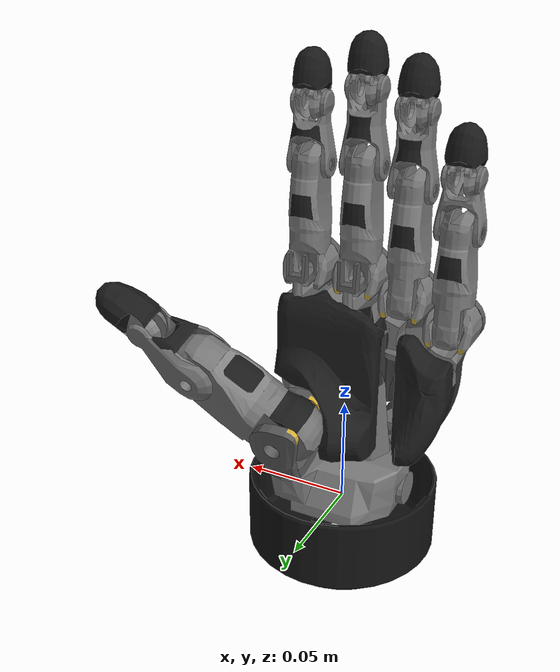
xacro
<?xml version="1.0"?>
<robot name="svh" xmlns:xacro="http://www.ros.org/wiki/xacro">

 <xacro:include filename="$(find schunk_svh_driver)/description/urdf/svh.urdf.xacro" />

 <link name="base_link" />

 <xacro:svh parent="base_link" name="left_hand" side="-1">
    <origin xyz="0 0 0"  rpy= "0 0 0" />
  </xacro:svh>

</robot>

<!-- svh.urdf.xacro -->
<robot xmlns:xacro="http://www.ros.org/wiki/xacro">

  <xacro:property name="cyl_radius" value="0.001" />
  <xacro:macro name="svh" params="parent name side *origin">
    <!-- RIGHT HAND = 1, LEFT HAND = -1 -->
    <!-- BASE_LINE LINKS -->

    <joint name="${name}_base_joint" type="fixed" >
      <xacro:insert_block name="origin" />
      <parent link="${parent}" />
      <child link="${name}_base_link" />
    </joint>

    <link name="${name}_base_link">
      <xacro:insert_block name="origin" />
      <visual>
	<origin xyz="0 0 -0.032" rpy="0 0 0" />
	<geometry>
          <mesh filename="package://schunk_svh_driver/description/meshes/base10.dae" />
	</geometry>
      </visual>
      <collision>
	<origin xyz="0 0 -0.032" rpy="0 0 0" />
	<geometry>
          <mesh filename="package://schunk_svh_driver/description/meshes/base10.dae" />
	</geometry>
      </collision>
    </link>

    <link name="${name}_d">
    </link>

    <link name="${name}_h">
    </link>

    <link name="${name}_d2">
    </link>

    <!-- LENGTH NOT FOUND IN DATASHEET! GUESSED!!! -->
    <link name="${name}_e1">
      <visual>
	<origin rpy="0 0 0" xyz="0 0.01313 0" />
	<geometry>
          <mesh scale="${side*(1)} 1 1" filename="package://schunk_svh_driver/description/meshes/h10.dae" />
	</geometry>
      </visual>
      <collision>
	<origin rpy="0 0 0" xyz="0 0.01313 0" />
	<geometry>
          <mesh scale="${side*(1)} 1 1" filename="package://schunk_svh_driver/description/meshes/h10.dae" />
	</geometry>
      </collision>
    </link>

    <!-- LENGTH NOT FOUND IN DATASHEET! GUESSED!!! -->
    <link name="${name}_e2">
      <visual>
	<origin xyz="${side*(-0.0007)} 0 -0.01002" />
	<geometry>
          <mesh scale="${side*(1)} 1 1" filename="package://schunk_svh_driver/description/meshes/h11.dae" />
	</geometry>
      </visual>
      <collision>
	<origin xyz="${side*(-0.0007)} 0 -0.01002" />
	<geometry>
          <mesh scale="${side*(1)} 1 1" filename="package://schunk_svh_driver/description/meshes/h11.dae" />
	</geometry>
      </collision>
    </link>

    <!-- LENGTH NOT FOUND IN DATASHEET! GUESSED!!! -->
    <link name="${name}_e3">
    </link>

    <link name="${name}_e">
    </link>

    <!-- LENGTH NOT FOUND IN DATASHEET! GUESSED, BUT POSITION CALCULATED: E4 = D-G-F!!! -->
    <link name="${name}_e4">
    </link>

    <!-- LENGTH NOT FOUND IN DATASHEET! GUESSED, BUT POSITION CALCULATED: E5 = D-G!!! -->
    <link name="${name}_e5">
    </link>

    <!-- THUMB LINKS -->
    <link name="${name}_z">
      <visual>
	<origin xyz="0 0 0.02442" />
	<geometry>
          <mesh scale="1 ${side*(1)} 1" filename="package://schunk_svh_driver/description/meshes/d10.dae" />
	</geometry>
      </visual>
      <collision>
	<origin xyz="0 0 0.02442" />
	<geometry>
          <mesh scale="1 ${side*(1)} 1" filename="package://schunk_svh_driver/description/meshes/d10.dae" />
	</geometry>
      </collision>
    </link>

    <link name="${name}_virtual_a" />
    <link name="${name}_a">
      <visual>
	<geometry>
          <mesh scale="1 ${side*(1)} ${side*(1)}" filename="package://schunk_svh_driver/description/meshes/d11.dae" />
	</geometry>
      </visual>
      <collision>
	<geometry>
          <mesh scale="1 ${side*(1)} ${side*(1)}" filename="package://schunk_svh_driver/description/meshes/d11.dae" />
	</geometry>
      </collision>
    </link>

    <link name="${name}_b">
      <visual>
	<geometry>
          <mesh scale="1 ${side*(1)} ${side*(1)}" filename="package://schunk_svh_driver/description/meshes/d12.dae" />
	</geometry>
      </visual>
      <collision>
	<geometry>
          <mesh scale="1 ${side*(1)} ${side*(1)}" filename="package://schunk_svh_driver/description/meshes/d12.dae" />
	</geometry>
      </collision>
    </link>

    <link name="${name}_c">
      <visual>
	<geometry>
          <mesh scale="1 ${side*(1)} ${side*(1)}" filename="package://schunk_svh_driver/description/meshes/d13.dae" />
	</geometry>
      </visual>
      <collision>
	<geometry>
          <mesh scale="1 ${side*(1)} ${side*(1)}" filename="package://schunk_svh_driver/description/meshes/d13.dae" />
	</geometry>
      </collision>
    </link>

    <!-- INDEX FINGER LINKS -->
    <link name="${name}_virtual_l">
      <visual>
	<origin xyz="0 0 0.01321" />
	<geometry>
          <mesh filename="package://schunk_svh_driver/description/meshes/f10.dae" />
	</geometry>
      </visual>
      <collision>
	<origin xyz="0 0 0.01321" />
	<geometry>
          <mesh filename="package://schunk_svh_driver/description/meshes/f10.dae" />
	</geometry>
      </collision>
    </link>

    <link name="${name}_l">
      <visual>
	<geometry>
          <mesh filename="package://schunk_svh_driver/description/meshes/f11.dae" />
	</geometry>
      </visual>
      <collision>
	<geometry>
          <mesh filename="package://schunk_svh_driver/description/meshes/f11.dae" />
	</geometry>
      </collision>
    </link>

    <link name="${name}_p">
      <visual>
	<geometry>
          <mesh filename="package://schunk_svh_driver/description/meshes/f12.dae" />
	</geometry>
      </visual>
      <collision>
	<geometry>
          <mesh filename="package://schunk_svh_driver/description/meshes/f12.dae" />
	</geometry>
      </collision>
    </link>

    <link name="${name}_t">
      <visual>
	<geometry>
          <mesh filename="package://schunk_svh_driver/description/meshes/f13.dae" />
	</geometry>
      </visual>
      <collision>
	<geometry>
          <mesh filename="package://schunk_svh_driver/description/meshes/f13.dae" />
	</geometry>
      </collision>
    </link>

    <!-- MIDDLE FINGER LINKS -->
    <link name="${name}_virtual_k">
      <visual>
	<origin xyz="0 0 0.01321" />
	<geometry>
          <mesh filename="package://schunk_svh_driver/description/meshes/f20.dae" />
	</geometry>
      </visual>
      <collision>
	<origin xyz="0 0 0.01321" />
	<geometry>
          <mesh filename="package://schunk_svh_driver/description/meshes/f20.dae" />
	</geometry>
      </collision>
    </link>

    <link name="${name}_k">
      <visual>
	<geometry>
          <mesh filename="package://schunk_svh_driver/description/meshes/f21.dae" />
	</geometry>
      </visual>
      <collision>
	<geometry>
          <mesh filename="package://schunk_svh_driver/description/meshes/f21.dae" />
	</geometry>
      </collision>
    </link>

    <link name="${name}_o">
      <visual>
	<geometry>
          <mesh filename="package://schunk_svh_driver/description/meshes/f22.dae" />
	</geometry>
      </visual>
      <collision>
	<geometry>
          <mesh filename="package://schunk_svh_driver/description/meshes/f22.dae" />
	</geometry>
      </collision>
    </link>

    <link name="${name}_s">
      <visual>
	<geometry>
          <mesh filename="package://schunk_svh_driver/description/meshes/f23.dae" />
	</geometry>
      </visual>
      <collision>
	<geometry>
          <mesh filename="package://schunk_svh_driver/description/meshes/f23.dae" />
	</geometry>
      </collision>
    </link>

    <!-- RING FINGER LINKS -->
    <link name="${name}_virtual_j">
      <visual>
	<origin xyz="0 0 -0.01321" />
	<geometry>
          <mesh filename="package://schunk_svh_driver/description/meshes/f30.dae" />
	</geometry>
      </visual>
      <collision>
	<origin xyz="0 0 -0.01321" />
	<geometry>
          <mesh filename="package://schunk_svh_driver/description/meshes/f30.dae" />
	</geometry>
      </collision>
    </link>

    <link name="${name}_j">
      <visual>
	<geometry>
          <mesh filename="package://schunk_svh_driver/description/meshes/f31.dae" />
	</geometry>
      </visual>
      <collision>
	<geometry>
          <mesh filename="package://schunk_svh_driver/description/meshes/f31.dae" />
	</geometry>
      </collision>
    </link>

    <link name="${name}_n">
      <visual>
	<geometry>
          <mesh filename="package://schunk_svh_driver/description/meshes/f32.dae" />
	</geometry>
      </visual>
      <collision>
	<geometry>
          <mesh filename="package://schunk_svh_driver/description/meshes/f32.dae" />
	</geometry>
      </collision>
    </link>

    <link name="${name}_r">
      <visual>
	<geometry>
          <mesh filename="package://schunk_svh_driver/description/meshes/f33.dae" />
	</geometry>
      </visual>
      <collision>
	<geometry>
          <mesh filename="package://schunk_svh_driver/description/meshes/f33.dae" />
	</geometry>
      </collision>
    </link>

    <!-- LITTLE FINGER LINKS -->
    <link name="${name}_virtual_i">
      <visual>
	<origin xyz="0 0 -0.01321" />
	<geometry>
          <mesh filename="package://schunk_svh_driver/description/meshes/f40.dae" />
	</geometry>
      </visual>
      <collision>
	<origin xyz="0 0 -0.01321" />
	<geometry>
          <mesh filename="package://schunk_svh_driver/description/meshes/f40.dae" />
	</geometry>
      </collision>
    </link>

    <link name="${name}_i">
      <visual>
	<geometry>
          <mesh filename="package://schunk_svh_driver/description/meshes/f41.dae" />
	</geometry>
      </visual>
      <collision>
	<geometry>
          <mesh filename="package://schunk_svh_driver/description/meshes/f41.dae" />
	</geometry>
      </collision>
    </link>

    <link name="${name}_m">
      <visual>
	<geometry>
          <mesh filename="package://schunk_svh_driver/description/meshes/f42.dae" />
	</geometry>
      </visual>
      <collision>
	<geometry>
          <mesh filename="package://schunk_svh_driver/description/meshes/f42.dae" />
	</geometry>
      </collision>
    </link>

    <link name="${name}_q">
      <visual>
	<geometry>
          <mesh filename="package://schunk_svh_driver/description/meshes/f43.dae" />
	</geometry>
      </visual>
      <collision>
	<geometry>
          <mesh filename="package://schunk_svh_driver/description/meshes/f43.dae" />
	</geometry>
      </collision>
    </link>

    <joint name="${name}_Thumb_Flexion" type="revolute">
      <parent link="${name}_virtual_a" />
      <child link="${name}_a" />
      <limit effort="1000.0" lower="0.0" upper="0.9704" velocity="1" />
      <origin xyz="0 0 0" rpy="0 0 ${side*(-0.9704)}" />
      <axis xyz="0 0 ${side*(1)}" />
    </joint>

    <joint name="${name}_Thumb_Helper" type="fixed">
      <parent link="${name}_z" />
      <child link="${name}_virtual_a" />
      <origin xyz="0 0 0.04596" rpy="0 -1.5707 3.1416" />
    </joint>

    <!-- BASE_LINE JOINTS -->
    <joint name="${name}_Thumb_Opposition" type="revolute">
      <parent link="${name}_e1" />
      <child link="${name}_z" />
      <limit effort="1000.0" lower="0.0" upper="0.9879" velocity="1" />
      <origin xyz="${side*(-0.01690)} 0.02626 0" rpy="0 0.2618 1.571" />
      <axis xyz="0 0 ${side*(-1)}" />
    </joint>

    <!-- JOINT NOT FOR BASE_LINE. BUT WRITTEN DOWN HERE FOR BETTER UX -->

    <joint name="${name}_f1" type="fixed">
      <parent link="${name}_e1" />
      <child link="${name}_d" />
      <origin xyz="0 0 0" rpy="0 0 0" />
    </joint>

    <joint name="${name}_f2" type="fixed">
      <parent link="${name}_d" />
      <child link="${name}_h" />
      <origin xyz="0 0 0" rpy="0 0 0" />
    </joint>

    <joint name="${name}_f3" type="fixed">
      <parent link="${name}_h" />
      <child link="${name}_d2" />
      <origin xyz="0 0 0" rpy="0 0 0" />
    </joint>

    <joint name="${name}_f4" type="fixed">
      <parent link="${name}_base_link" />
      <child link="${name}_e1" />
      <origin xyz="0 -0.01313 0" rpy="0 0 0" />
    </joint>

    <joint name="${name}_j5" type="revolute">
      <parent link="${name}_e1" />
      <child link="${name}_e2" />
      <limit effort="1000.0" lower="0.0" upper="0.98786" velocity="1" />
      <origin xyz="${side*(0.01840)} 0.006 0.0375" rpy="0 0 0" />
      <axis xyz="0 0 ${side*(1)}" />
      <mimic joint="${name}_Thumb_Opposition" multiplier="1" offset="0" />
    </joint>

    <joint name="${name}_f5" type="fixed">
      <parent link="${name}_e2" />
      <child link="${name}_e3" />
      <origin xyz="0 -0.0060 0" rpy="0 0 0" />
    </joint>

    <joint name="${name}_f6" type="fixed">
      <parent link="${name}_e3" />
      <child link="${name}_e" />
      <origin xyz="0 0 0" rpy="0 0 0" />
    </joint>

    <joint name="${name}_f7" type="fixed">
      <parent link="${name}_e" />
      <child link="${name}_e4" />
      <origin xyz="0 0 0" rpy="0 0 0" />
    </joint>

    <joint name="${name}_f8" type="fixed">
      <parent link="${name}_e" />
      <child link="${name}_e5" />
      <origin xyz="0 0 0" rpy="0 0 0" />
    </joint>

    <!-- THUMB JOINTS -->
    <joint name="${name}_j3" type="revolute">
      <parent link="${name}_a" />
      <child link="${name}_b" />
      <limit effort="1000.0" lower="0.0" upper="0.98506" velocity="1" />
      <origin xyz="0.0485 0 0" rpy="0 0 0" />
      <axis xyz="0 0 ${side*(1)}" />
      <mimic joint="${name}_Thumb_Flexion" multiplier="1.01511" offset="0" />
    </joint>

    <joint name="${name}_j4" type="revolute">
      <parent link="${name}_b" />
      <child link="${name}_c" />
      <limit effort="1000.0" lower="0.0" upper="1.406" velocity="1" />
      <origin xyz="0.030 0 0" rpy="0 0 0" />
      <axis xyz="0 0 ${side*(1)}" />
      <mimic joint="${name}_Thumb_Flexion" multiplier="1.44889" offset="0" />
    </joint>

    <!-- INDEX FINGER JOINTS -->
    <joint name="${name}_Index_Finger_Distal" type="revolute">
      <parent link="${name}_l" />
      <child link="${name}_p" />
      <limit effort="1000.0" lower="0" upper="1.334" velocity="1" />
      <origin xyz="0.04804 0 0" rpy="0 0 0" />
      <axis xyz="0 0 1" />
    </joint>

    <joint name="${name}_Index_Finger_Proximal" type="revolute">
      <parent link="${name}_virtual_l" />
      <child link="${name}_l" />
      <limit effort="1000.0" lower="0.0" upper="0.79849" velocity="1" />
      <origin xyz="0 0 0" rpy="-1.5707 0 0" />
      <axis xyz="0 0 1" />
    </joint>

    <!-- JOINT Finger_Spread in BASE_LINE section for better UX -->
    <joint name="${name}_j14" type="revolute">
      <parent link="${name}_p" />
      <child link="${name}_t" />
      <limit effort="1000.0" lower="0" upper="1.394" velocity="1" />
      <origin xyz="0.026 0 0" rpy="0 0 0" />
      <axis xyz="0 0 1" />
      <mimic joint="${name}_Index_Finger_Distal" multiplier="1.0450" offset="0" />
    </joint>

    <!-- MIDDLE FINGER JOINTS -->
    <joint name="${name}_Middle_Finger_Proximal" type="revolute">
      <parent link="${name}_virtual_k" />
      <child link="${name}_k" />
      <limit effort="1000.0" lower="0.0" upper="0.79849" velocity="1" />
      <origin xyz="0 0 0" rpy="-1.5707 0 0" />
      <axis xyz="0 0 1" />
    </joint>

    <joint name="${name}_Middle_Finger_Distal" type="revolute">
      <parent link="${name}_k" />
      <child link="${name}_o" />
      <limit effort="1000.0" lower="0" upper="1.334" velocity="1" />
      <origin xyz="0.05004 0 0" rpy="0 0 0" />
      <axis xyz="0 0 1" />
    </joint>

    <joint name="${name}_j15" type="revolute">
      <parent link="${name}_o" />
      <child link="${name}_s" />
      <limit effort="1000.0" lower="0" upper="1.334" velocity="1" />
      <origin xyz="0.032 0 0" rpy="0 0 0" />
      <axis xyz="0 0 1" />
      <mimic joint="${name}_Middle_Finger_Distal" multiplier="1.0454" offset="0" />
    </joint>

    <!-- RING FINGER JOINTS -->
    <joint name="${name}_Ring_Finger" type="revolute">
      <parent link="${name}_virtual_j" />
      <child link="${name}_j" />
      <limit effort="1000.0" lower="0.0" upper="0.98175" velocity="1" />
      <origin xyz="0 0 0" rpy="1.5707 0 0" />
      <axis xyz="0 0 1" />
    </joint>

    <joint name="${name}_j12" type="revolute">
      <parent link="${name}_j" />
      <child link="${name}_n" />
      <limit effort="1000.0" lower="0" upper="1.334" velocity="1" />
      <origin xyz="0.05004 0 0" rpy="0 0 0" />
      <axis xyz="0 0 1" />
      <mimic joint="${name}_Ring_Finger" multiplier="1.3588" offset="0" />
    </joint>

    <joint name="${name}_j16" type="revolute">
      <parent link="${name}_n" />
      <child link="${name}_r" />
      <limit effort="1000.0" lower="0" upper="1.395" velocity="1" />
      <origin xyz="0.032 0 0" rpy="0 0 0" />
      <axis xyz="0 0 1" />
      <mimic joint="${name}_Ring_Finger" multiplier="1.42093" offset="0" />
    </joint>

    <!-- PINKY JOINTS -->
    <joint name="${name}_Pinky" type="revolute">
      <parent link="${name}_virtual_i" />
      <child link="${name}_i" />
      <limit effort="1000.0" lower="0.0" upper="0.98175" velocity="1" />
      <origin xyz="0 0 0" rpy="1.5707 0 0" />
      <axis xyz="0 0 1" />
    </joint>

    <joint name="${name}_j13" type="revolute">
      <parent link="${name}_i" />
      <child link="${name}_m" />
      <limit effort="1000.0" lower="0" upper="1.334" velocity="1" />
      <origin xyz="0.04454 0 0" rpy="0 0 0" />
      <axis xyz="0 0 1" />
      <mimic joint="${name}_Pinky" multiplier="1.35880" offset="0" />
    </joint>

    <joint name="${name}_j17" type="revolute">
      <parent link="${name}_m" />
      <child link="${name}_q" />
      <limit effort="1000.0" lower="0" upper="1.3971" velocity="1" />
      <origin xyz="0.022 0 0" rpy="0 0 0" />
      <axis xyz="0 0 1" />
      <mimic joint="${name}_Pinky" multiplier="1.42307" offset="0" />
    </joint>

    <joint name="${name}_index_spread" type="revolute">
      <parent link="${name}_d2" />
      <child link="${name}_virtual_l" />
      <limit effort="1000.0" lower="0.0" upper="0.28833" velocity="1" />
      <origin xyz="${side*(-0.025)} 0 0.110" rpy="0 -1.5707 1.5707" />
      <axis xyz="0 0 ${side*(1)}" />
      <mimic joint="${name}_Finger_Spread" multiplier="0.5" offset="0" />
    </joint>

    <joint name="${name}_middle_spread_dummy" type="fixed">
      <parent link="${name}_d" />
      <child link="${name}_virtual_k" />
      <origin xyz="0 0 0.110" rpy="0 -1.5707 1.5707" />
    </joint>

    <joint name="${name}_ring_spread" type="revolute">
      <parent link="${name}_e5" />
      <child link="${name}_virtual_j" />
      <limit effort="1000.0" lower="0.0" upper="0.28833" velocity="1" />
      <origin xyz="${side*(0.003855)} 0 0.0655" rpy="-1.5707 -1.5707 0" />
      <axis xyz="0 0 ${side*(1)}" />
      <mimic joint="${name}_Finger_Spread" multiplier="0.5" offset="0" />
    </joint>

    <joint name="${name}_Finger_Spread" type="revolute">
      <parent link="${name}_e4" />
      <child link="${name}_virtual_i" />
      <limit effort="1000.0" lower="0.0" upper="0.5829" velocity="1" />
      <origin xyz="${side*(0.025355)} 0 0.056" rpy="-1.5707 -1.5707 0" />
      <axis xyz="0 0 ${side*(1)}" />
    </joint>
</xacro:macro>
</robot>
